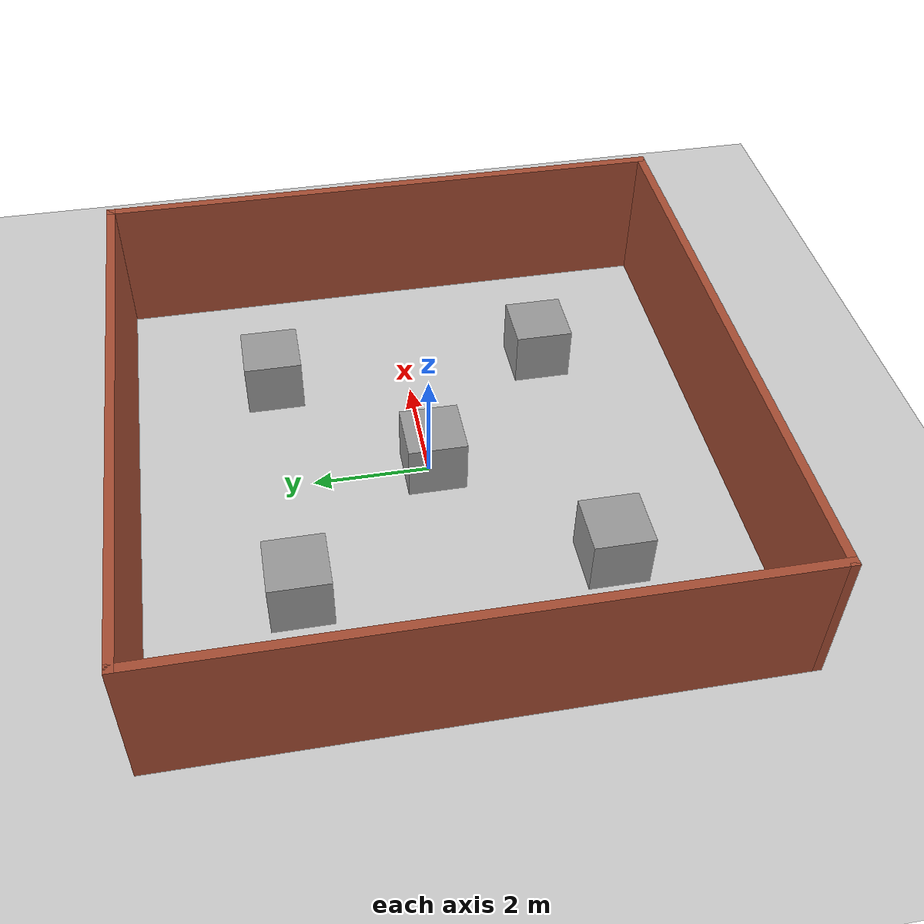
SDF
<sdf version="1.7">
 <world name="default">
  <light name="sun" type="directional">
   <pose>0 0 10 0 -0 0</pose>
   <diffuse>0.8 0.8 0.8 1</diffuse>
   <specular>0.2 0.2 0.2 1</specular>
   <attenuation>
    <range>1000</range>
    <constant>0.9</constant>
    <linear>0.01</linear>
    <quadratic>0.001</quadratic>
   </attenuation>
   <direction>-0.5 0.1 -0.9</direction>
   <spot><inner_angle>0</inner_angle><outer_angle>0</outer_angle><falloff>0</falloff></spot>
  </light>
  <model name="ground_plane">
   <static>1</static>
   <link name="link">
    <collision name="collision">
     <geometry><plane><normal>0 0 1</normal><size>100 100</size></plane></geometry>
     <surface><friction><ode><mu>100</mu><mu2>50</mu2></ode></friction></surface>
    </collision>
    <visual name="visual">
     <cast_shadows>0</cast_shadows>
     <geometry><plane><normal>0 0 1</normal><size>100 100</size></plane></geometry>
     <material>
      <script><uri>file://media/materials/scripts/gazebo.material</uri><name>Gazebo/Grey</name></script>
     </material>
    </visual>
   </link>
  </model>
  <gravity>0 0 -9.8</gravity>
  <magnetic_field>6e-06 2.3e-05 -4.2e-05</magnetic_field>
  <atmosphere type="adiabatic"/>
  <physics type="ode">
   <max_step_size>0.001</max_step_size>
   <real_time_factor>1</real_time_factor>
   <real_time_update_rate>1000</real_time_update_rate>
  </physics>
  <scene><ambient>0.4 0.4 0.4 1</ambient><background>0.7 0.7 0.7 1</background><shadows>1</shadows></scene>
  <spherical_coordinates>
   <surface_model>EARTH_WGS84</surface_model>
   <latitude_deg>0</latitude_deg>
   <longitude_deg>0</longitude_deg>
   <elevation>0</elevation>
   <heading_deg>0</heading_deg>
  </spherical_coordinates>
  <model name="5_5_empty">
   <link name="Wall_0">
    <collision name="Wall_0_Collision">
     <geometry><box><size>10.15 0.15 2.5</size></box></geometry>
     <pose>0 0 1.25 0 -0 0</pose>
    </collision>
    <visual name="Wall_0_Visual">
     <pose>0 0 1.25 0 -0 0</pose>
     <geometry><box><size>10.15 0.15 2.5</size></box></geometry>
     <material>
      <script><uri>file://media/materials/scripts/gazebo.material</uri><name>Gazebo/Bricks</name></script>
      <ambient>0.996078 0.47451 0.0196078 1</ambient>
     </material>
     <meta><layer>0</layer></meta>
    </visual>
    <pose>-5 0 0 0 -0 1.5708</pose>
   </link>
   <link name="Wall_2">
    <collision name="Wall_2_Collision">
     <geometry><box><size>10.15 0.15 2.5</size></box></geometry>
     <pose>0 0 1.25 0 -0 0</pose>
    </collision>
    <visual name="Wall_2_Visual">
     <pose>0 0 1.25 0 -0 0</pose>
     <geometry><box><size>10.15 0.15 2.5</size></box></geometry>
     <material>
      <script><uri>file://media/materials/scripts/gazebo.material</uri><name>Gazebo/Bricks</name></script>
      <ambient>0.996078 0.47451 0.0196078 1</ambient>
     </material>
     <meta><layer>0</layer></meta>
    </visual>
    <pose>0 5 0 0 -0 0</pose>
   </link>
   <link name="Wall_3">
    <collision name="Wall_3_Collision">
     <geometry><box><size>10.15 0.15 2.5</size></box></geometry>
     <pose>0 0 1.25 0 -0 0</pose>
    </collision>
    <visual name="Wall_3_Visual">
     <pose>0 0 1.25 0 -0 0</pose>
     <geometry><box><size>10.15 0.15 2.5</size></box></geometry>
     <material>
      <script><uri>file://media/materials/scripts/gazebo.material</uri><name>Gazebo/Bricks</name></script>
      <ambient>0.996078 0.47451 0.0196078 1</ambient>
     </material>
     <meta><layer>0</layer></meta>
    </visual>
    <pose>5 0 0 0 -0 -1.5708</pose>
   </link>
   <link name="Wall_4">
    <collision name="Wall_4_Collision">
     <geometry><box><size>0.15 0.15 2.5</size></box></geometry>
     <pose>0 0 1.25 0 -0 0</pose>
    </collision>
    <visual name="Wall_4_Visual">
     <pose>0 0 1.25 0 -0 0</pose>
     <geometry><box><size>0.15 0.15 2.5</size></box></geometry>
     <material>
      <script><uri>file://media/materials/scripts/gazebo.material</uri><name>Gazebo/Bricks</name></script>
      <ambient>0.996078 0.47451 0.0196078 1</ambient>
     </material>
     <meta><layer>0</layer></meta>
    </visual>
    <pose>5 -5 0 0 -0 0</pose>
   </link>
   <link name="Wall_6">
    <collision name="Wall_6_Collision">
     <geometry><box><size>10.15 0.15 2.5</size></box></geometry>
     <pose>0 0 1.25 0 -0 0</pose>
    </collision>
    <visual name="Wall_6_Visual">
     <pose>0 0 1.25 0 -0 0</pose>
     <geometry><box><size>10.15 0.15 2.5</size></box></geometry>
     <material>
      <script><uri>file://media/materials/scripts/gazebo.material</uri><name>Gazebo/Bricks</name></script>
      <ambient>0.996078 0.47451 0.0196078 1</ambient>
     </material>
     <meta><layer>0</layer></meta>
    </visual>
    <pose>0 -5 0 0 -0 0</pose>
   </link>
   <static>1</static>
  </model>
  <model name="unit_box">
   <pose>-2.47404 2.47885 0.499995 1e-05 -0 0</pose>
   <link name="link">
    <inertial>
     <mass>1</mass>
     <inertia>
      <ixx>0.166667</ixx>
      <ixy>0</ixy>
      <ixz>0</ixz>
      <iyy>0.166667</iyy>
      <iyz>0</iyz>
      <izz>0.166667</izz>
     </inertia>
    </inertial>
    <collision name="collision"><geometry><box><size>1 1 1</size></box></geometry></collision>
    <visual name="visual">
     <geometry><box><size>1 1 1</size></box></geometry>
     <material>
      <script><name>Gazebo/Grey</name><uri>file://media/materials/scripts/gazebo.material</uri></script>
     </material>
    </visual>
   </link>
   <static>1</static>
  </model>
  <model name="unit_box_clone">
   <pose>-2.51094 -2.5394 0.499995 0 1e-05 0</pose>
   <link name="link">
    <inertial>
     <mass>1</mass>
     <inertia>
      <ixx>0.166667</ixx>
      <ixy>0</ixy>
      <ixz>0</ixz>
      <iyy>0.166667</iyy>
      <iyz>0</iyz>
      <izz>0.166667</izz>
     </inertia>
    </inertial>
    <collision name="collision"><geometry><box><size>1 1 1</size></box></geometry></collision>
    <visual name="visual">
     <geometry><box><size>1 1 1</size></box></geometry>
     <material>
      <script><name>Gazebo/Grey</name><uri>file://media/materials/scripts/gazebo.material</uri></script>
     </material>
    </visual>
   </link>
   <static>1</static>
  </model>
  <model name="unit_box_clone_0">
   <pose>2.43269 -2.46484 0.499995 0 -1e-05 0</pose>
   <link name="link">
    <inertial>
     <mass>1</mass>
     <inertia>
      <ixx>0.166667</ixx>
      <ixy>0</ixy>
      <ixz>0</ixz>
      <iyy>0.166667</iyy>
      <iyz>0</iyz>
      <izz>0.166667</izz>
     </inertia>
    </inertial>
    <collision name="collision"><geometry><box><size>1 1 1</size></box></geometry></collision>
    <visual name="visual">
     <geometry><box><size>1 1 1</size></box></geometry>
     <material>
      <script><name>Gazebo/Grey</name><uri>file://media/materials/scripts/gazebo.material</uri></script>
     </material>
    </visual>
   </link>
   <static>1</static>
  </model>
  <model name="unit_box_clone_1">
   <pose>2.43202 2.45087 0.499995 0 1e-05 0</pose>
   <link name="link">
    <inertial>
     <mass>1</mass>
     <inertia>
      <ixx>0.166667</ixx>
      <ixy>0</ixy>
      <ixz>0</ixz>
      <iyy>0.166667</iyy>
      <iyz>0</iyz>
      <izz>0.166667</izz>
     </inertia>
    </inertial>
    <collision name="collision"><geometry><box><size>1 1 1</size></box></geometry></collision>
    <visual name="visual">
     <geometry><box><size>1 1 1</size></box></geometry>
     <material>
      <script><name>Gazebo/Grey</name><uri>file://media/materials/scripts/gazebo.material</uri></script>
     </material>
    </visual>
   </link>
   <static>1</static>
  </model>
  <model name="unit_box_0">
   <pose>-0.031915 -0.064035 0.5 0 -0 0</pose>
   <link name="link">
    <inertial>
     <mass>1</mass>
     <inertia>
      <ixx>0.166667</ixx>
      <ixy>0</ixy>
      <ixz>0</ixz>
      <iyy>0.166667</iyy>
      <iyz>0</iyz>
      <izz>0.166667</izz>
     </inertia>
    </inertial>
    <collision name="collision"><geometry><box><size>1 1 1</size></box></geometry></collision>
    <visual name="visual">
     <geometry><box><size>1 1 1</size></box></geometry>
     <material>
      <script><name>Gazebo/Grey</name><uri>file://media/materials/scripts/gazebo.material</uri></script>
     </material>
    </visual>
   </link>
   <static>1</static>
  </model>
 </world>
</sdf>
